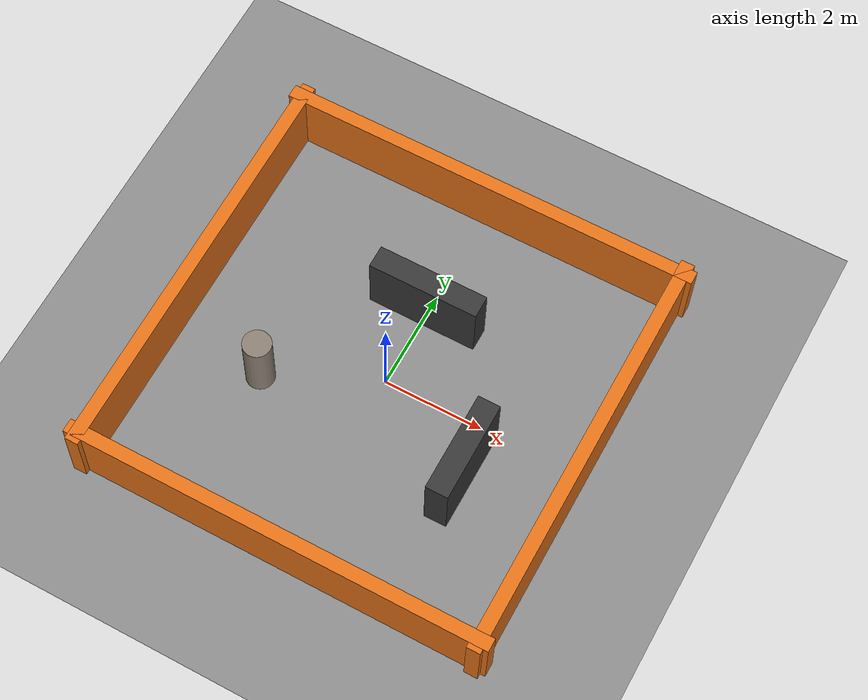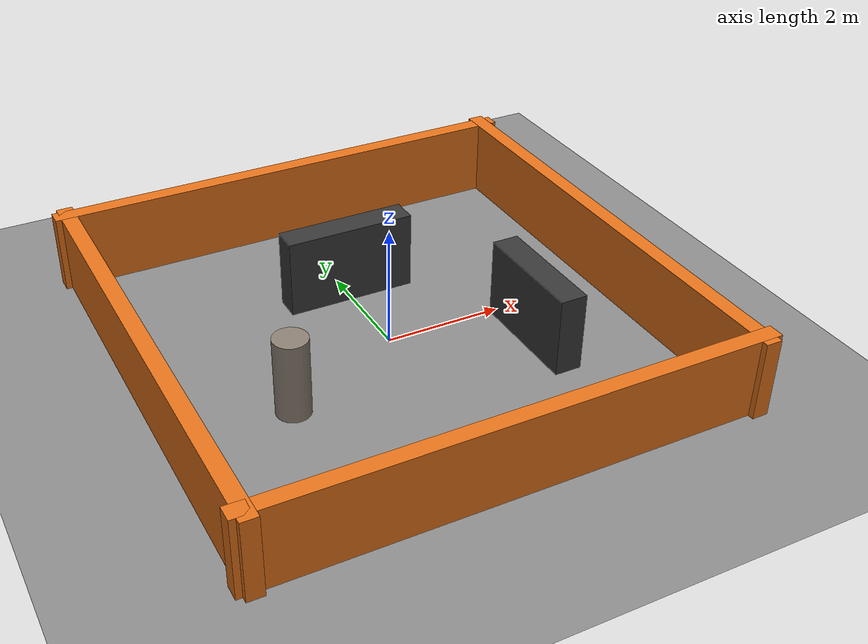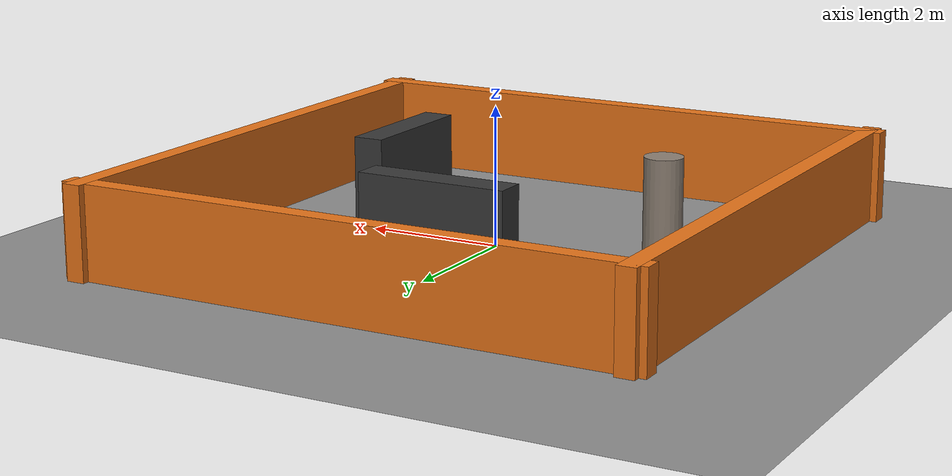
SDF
<?xml version="1.0" ?>
<sdf version="1.9">
  <!-- PX4-friendly small arena: no embedded rex_quadcopter models. -->
  <!-- Keep world name as "playfield" so /world/playfield/clock matches existing launch defaults. -->
  <world name="playfield">
    <physics name="1ms" type="ode">
      <max_step_size>0.001</max_step_size>
      <real_time_factor>1.0</real_time_factor>
      <real_time_update_rate>1000</real_time_update_rate>
    </physics>

    <plugin filename="gz-sim-physics-system" name="gz::sim::systems::Physics" />
    <plugin filename="gz-sim-user-commands-system" name="gz::sim::systems::UserCommands" />
    <!-- PX4 SITL sensors (IMU / barometer / GPS) require these system plugins. -->
    <plugin filename="gz-sim-contact-system" name="gz::sim::systems::Contact" />
    <plugin filename="gz-sim-imu-system" name="gz::sim::systems::Imu" />
    <plugin filename="gz-sim-air-pressure-system" name="gz::sim::systems::AirPressure" />
    <plugin filename="gz-sim-apply-link-wrench-system" name="gz::sim::systems::ApplyLinkWrench" />
    <plugin filename="gz-sim-navsat-system" name="gz::sim::systems::NavSat" />
    <plugin filename="gz-sim-sensors-system" name="gz::sim::systems::Sensors">
      <render_engine>ogre2</render_engine>
    </plugin>
    <plugin filename="gz-sim-scene-broadcaster-system" name="gz::sim::systems::SceneBroadcaster" />

    <light type="directional" name="sun">
      <cast_shadows>true</cast_shadows>
      <pose>0 0 10 0 0 0</pose>
      <diffuse>0.8 0.8 0.8 1</diffuse>
      <specular>0.2 0.2 0.2 1</specular>
      <attenuation>
        <range>1000</range>
        <constant>0.9</constant>
        <linear>0.01</linear>
        <quadratic>0.001</quadratic>
      </attenuation>
      <direction>-0.5 0.1 -0.9</direction>
    </light>

    <!-- Base field (8 × 8 m) -->
    <model name="ground_plane">
      <static>true</static>
      <link name="link">
        <collision name="collision">
          <geometry>
            <plane>
              <normal>0 0 1</normal>
              <size>8 8</size>
            </plane>
          </geometry>
        </collision>
        <visual name="visual">
          <geometry>
            <plane>
              <normal>0 0 1</normal>
              <size>8 8</size>
            </plane>
          </geometry>
          <material>
            <ambient>0.55 0.55 0.55 1</ambient>
            <diffuse>0.55 0.55 0.55 1</diffuse>
            <specular>0.2 0.2 0.2 1</specular>
          </material>
        </visual>
      </link>
    </model>

    <!-- Perimeter walls (1.33 m). The inside faces are at +/-3.865 m. -->
    <model name="perimeter_wall_north">
      <static>true</static>
      <pose>0 4 0 0 0 0</pose>
      <link name="link">
        <collision name="collision">
          <pose>0 0 0.665 0 0 0</pose>
          <geometry>
            <box>
              <size>8.47 0.27 1.33</size>
            </box>
          </geometry>
        </collision>
        <visual name="visual">
          <pose>0 0 0.665 0 0 0</pose>
          <geometry>
            <box>
              <size>8.47 0.27 1.33</size>
            </box>
          </geometry>
          <material>
            <ambient>0.9 0.45 0.1 1</ambient>
            <diffuse>0.9 0.45 0.1 1</diffuse>
          </material>
        </visual>
      </link>
    </model>

    <model name="perimeter_wall_south">
      <static>true</static>
      <pose>0 -4 0 0 0 0</pose>
      <link name="link">
        <collision name="collision">
          <pose>0 0 0.665 0 0 0</pose>
          <geometry>
            <box>
              <size>8.47 0.27 1.33</size>
            </box>
          </geometry>
        </collision>
        <visual name="visual">
          <pose>0 0 0.665 0 0 0</pose>
          <geometry>
            <box>
              <size>8.47 0.27 1.33</size>
            </box>
          </geometry>
          <material>
            <ambient>0.9 0.45 0.1 1</ambient>
            <diffuse>0.9 0.45 0.1 1</diffuse>
          </material>
        </visual>
      </link>
    </model>

    <model name="perimeter_wall_east">
      <static>true</static>
      <pose>4 0 0 0 0 0</pose>
      <link name="link">
        <collision name="collision">
          <pose>0 0 0.665 0 0 0</pose>
          <geometry>
            <box>
              <size>0.27 8.47 1.33</size>
            </box>
          </geometry>
        </collision>
        <visual name="visual">
          <pose>0 0 0.665 0 0 0</pose>
          <geometry>
            <box>
              <size>0.27 8.47 1.33</size>
            </box>
          </geometry>
          <material>
            <ambient>0.9 0.45 0.1 1</ambient>
            <diffuse>0.9 0.45 0.1 1</diffuse>
          </material>
        </visual>
      </link>
    </model>

    <model name="perimeter_wall_west">
      <static>true</static>
      <pose>-4 0 0 0 0 0</pose>
      <link name="link">
        <collision name="collision">
          <pose>0 0 0.665 0 0 0</pose>
          <geometry>
            <box>
              <size>0.27 8.47 1.33</size>
            </box>
          </geometry>
        </collision>
        <visual name="visual">
          <pose>0 0 0.665 0 0 0</pose>
          <geometry>
            <box>
              <size>0.27 8.47 1.33</size>
            </box>
          </geometry>
          <material>
            <ambient>0.9 0.45 0.1 1</ambient>
            <diffuse>0.9 0.45 0.1 1</diffuse>
          </material>
        </visual>
      </link>
    </model>

    <!-- Simple interior obstacles (spaced for 4m ToF range + conservative Nav2 clearance). -->
    <model name="block_north">
      <static>true</static>
      <pose>0 1.6 0 0 0 0</pose>
      <link name="link">
        <collision name="collision">
          <pose>0 0 0.665 0 0 0</pose>
          <geometry>
            <box>
              <size>2.2 0.45 1.33</size>
            </box>
          </geometry>
        </collision>
        <visual name="visual">
          <pose>0 0 0.665 0 0 0</pose>
          <geometry>
            <box>
              <size>2.2 0.45 1.33</size>
            </box>
          </geometry>
          <material>
            <ambient>0.18 0.18 0.18 1</ambient>
            <diffuse>0.22 0.22 0.22 1</diffuse>
          </material>
        </visual>
      </link>
    </model>

    <model name="block_east">
      <static>true</static>
      <pose>2.1 -1.0 0 0 0 0</pose>
      <link name="link">
        <collision name="collision">
          <pose>0 0 0.665 0 0 0</pose>
          <geometry>
            <box>
              <size>0.45 2.0 1.33</size>
            </box>
          </geometry>
        </collision>
        <visual name="visual">
          <pose>0 0 0.665 0 0 0</pose>
          <geometry>
            <box>
              <size>0.45 2.0 1.33</size>
            </box>
          </geometry>
          <material>
            <ambient>0.18 0.18 0.18 1</ambient>
            <diffuse>0.22 0.22 0.22 1</diffuse>
          </material>
        </visual>
      </link>
    </model>

    <model name="pillar_west">
      <static>true</static>
      <pose>-2.1 -1.0 0 0 0 0</pose>
      <link name="link">
        <collision name="collision">
          <pose>0 0 0.665 0 0 0</pose>
          <geometry>
            <cylinder>
              <radius>0.28</radius>
              <length>1.33</length>
            </cylinder>
          </geometry>
        </collision>
        <visual name="visual">
          <pose>0 0 0.665 0 0 0</pose>
          <geometry>
            <cylinder>
              <radius>0.28</radius>
              <length>1.33</length>
            </cylinder>
          </geometry>
          <material>
            <ambient>0.45 0.4 0.35 1</ambient>
            <diffuse>0.55 0.5 0.45 1</diffuse>
          </material>
        </visual>
      </link>
    </model>
  </world>
</sdf>
